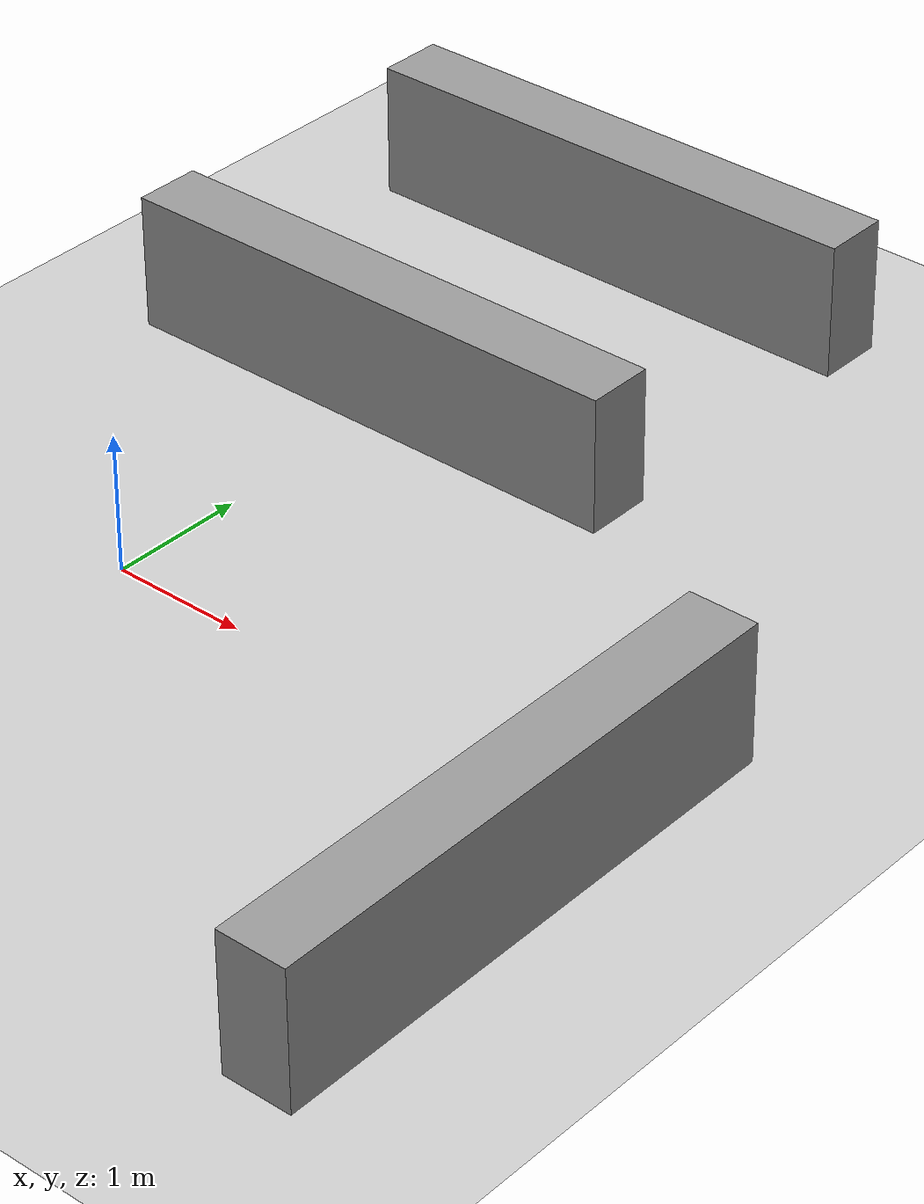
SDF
<?xml version="1.0"?>
<sdf version="1.7">

  <!-- Define the world with physics, plugins, and lighting -->
  <world name="supermarket">
    <!-- Physics Settings -->
    <physics name="default_physics" type="ode">
      <max_step_size>0.001</max_step_size>
      <real_time_factor>1.0</real_time_factor>
    </physics>

    <!-- Gazebo Plugins -->
    <plugin filename="gz-sim-physics-system" name="gz::sim::systems::Physics"/>
    <plugin filename="gz-sim-user-commands-system" name="gz::sim::systems::UserCommands"/>
    <plugin filename="gz-sim-scene-broadcaster-system" name="gz::sim::systems::SceneBroadcaster"/>
    <plugin filename="gz-sim-contact-system" name="gz::sim::systems::Contact"/>
    <plugin filename="gz-sim-sensors-system" name="gz::sim::systems::Sensors">
      <render_engine>ogre2</render_engine>
    </plugin>
    <plugin filename="gz-sim-imu-system" name="gz::sim::systems::Imu"/>

    <!-- Light Source -->
    <light type="directional" name="sun">
      <cast_shadows>true</cast_shadows>
      <pose>0 0 10 0 0 0</pose>
      <diffuse>0.8 0.8 0.8 1</diffuse>
      <specular>0.2 0.2 0.2 1</specular>
      <attenuation>
        <range>1000</range>
        <constant>0.9</constant>
        <linear>0.01</linear>
        <quadratic>0.001</quadratic>
      </attenuation>
      <direction>-0.5 0.1 -0.9</direction>
    </light>

    <!-- Gravity Settings -->
    <gravity>0 0 -9.81</gravity>

    <!-- Ground Plane to Prevent Objects from Falling -->
    <model name="ground_plane">
      <static>true</static>
      <link name="link">
        <collision name="collision">
          <geometry>
            <plane>
              <normal>0 0 1</normal>
              <size>100 100</size>
            </plane>
          </geometry>
        </collision>
        <visual name="visual">
          <geometry>
            <plane>
              <normal>0 0 1</normal>
              <size>100 100</size>
            </plane>
          </geometry>
          <material>
            <ambient>0.8 0.8 0.8 1</ambient>
            <diffuse>0.8 0.8 0.8 1</diffuse>
            <specular>0.8 0.8 0.8 1</specular>
          </material>
        </visual>
      </link>
    </model>

    <!-- Supermarket Model with Walls -->
    <model name="supermarket">
      <pose>0 0 0 0 0 0</pose>
      <static>true</static>

    <link name='fruits'>
      <collision name='fruits_Collision'>
        <geometry>
          <box>
            <size>4 0.5 1.5</size>
          </box>
        </geometry>
        <pose>0 0 0 0 0 0</pose>
      </collision>
      <visual name='fruits_Visual'>
        <pose>0 0 0 0 0 0</pose>
        <geometry>
          <box>
            <size>4 0.5 1</size>
          </box>
        </geometry>
        <material>
          <script>
            <uri>file://media/materials/scripts/gazebo.material</uri>
            <name>Gazebo/Grey</name>
          </script>
          <ambient>1 1 1 1</ambient>
        </material>
        <meta>
          <layer>0</layer>
        </meta>
      </visual>
      <pose>4 -1 0.5 0 0 1.57708</pose>
    </link>

    <link name='drinks'>
      <collision name='drinks_Collision'>
        <geometry>
          <box>
            <size>4 0.5 1.5</size>
          </box>
        </geometry>
        <pose>0 0 0 0 -0 0</pose>
      </collision>
      <visual name='drinksVisual'>
        <pose>0 0 0 0 -0 0</pose>
        <geometry>
          <box>
            <size>4 0.5 1</size>
          </box>
        </geometry>
        <material>
          <script>
            <uri>file://media/materials/scripts/gazebo.material</uri>
            <name>Gazebo/Grey</name>
          </script>
          <ambient>1 1 1 1</ambient>
        </material>
        <meta>
          <layer>0</layer>
        </meta>
      </visual>
      <pose>0 5 0.5 0 0 0</pose>
    </link>

    <link name='sweets'>
      <collision name='sweets_Collision'>
        <geometry>
          <box>
            <size>4 0.5 1.5</size>
          </box>
        </geometry>
        <pose>0 0 0 0 0 0</pose>
      </collision>
      <visual name='sweets_Visual'>
        <pose>0 0 0 0 0 0</pose>
        <geometry>
          <box>
            <size>4 0.5 1</size>
          </box>
        </geometry>
        <material>
          <script>
            <uri>file://media/materials/scripts/gazebo.material</uri>
            <name>Gazebo/Grey</name>
          </script>
          <ambient>1 1 1 1</ambient>
        </material>
        <meta>
          <layer>0</layer>
        </meta>
      </visual>
      <pose>0 2.5 0.5 0 0 0</pose>
    </link>

    </model>
  </world>
</sdf>
